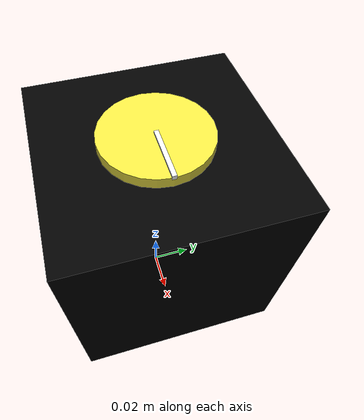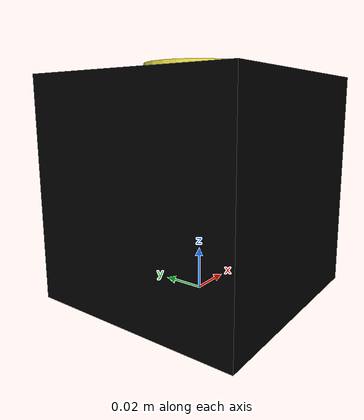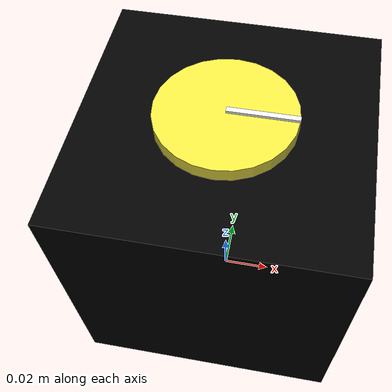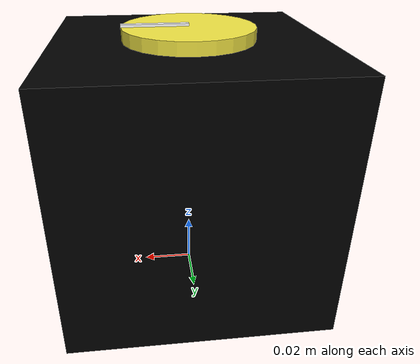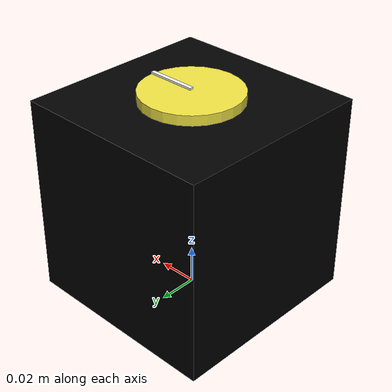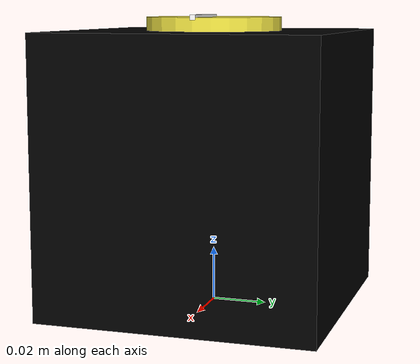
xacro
<?xml version="1.0"?>
<robot xmlns:xacro="http://www.ros.org/wiki/xacro" name="myfirst">

  <xacro:arg name="baud_rate" default="115200"/>
  <xacro:arg name="device" default="/dev/ttyACM0"/>
  <xacro:arg name="simulation" default="false"/>

  <!-- Loads qube_driver and passes launch arguments-->
  <xacro:include filename="$(find qube_driver)/ros2_control/qube_driver.ros2_control.xacro"/>
  <xacro:qube_driver_ros2_control
    name="qube_driver" prefix=""
    baud_rate="$(arg baud_rate)"
    device="$(arg device)"
    simulation="$(arg simulation)" />

  <link name="world"/>
  <link name="base_link"/>

  <joint name="base_joint" type="fixed">
    <parent link="world"/>
    <child link="base_link"/>
  </joint>

  <!-- Places Quanser cube -->
  <xacro:include filename="$(find qube_description)/urdf/qube.macro.xacro"/>
  <xacro:qube parent="base_link" prefix=""/>
</robot>

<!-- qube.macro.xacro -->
<robot xmlns:xacro="http://www.ros.org/wiki/xacro" >

    <material name="black">
      <color rgba="0 0 0 1"/>
    </material>
    <material name="white">
      <color rgba="1 1 1 1"/>
  </material>

  <xacro:macro name="qube" params="parent prefix">

    <!--Dimensions of Qube-->
    <xacro:property name="box_width" value="0.102"/>
    <xacro:property name="rotor_radius" value="0.025"/>
    <xacro:property name="rotor_length" value="0.01"/>
    <xacro:property name="angle_width" value="0.002"/>

    <link name="${prefix}stator_link">
      <visual>
        <geometry>
          <box size="${box_width} ${box_width} ${box_width}"/>
        </geometry>
        <material name="black"/>
      </visual>
    </link>

    <link name="${prefix}rotor_link">
      <visual>
        <geometry>
          <cylinder length="${rotor_length}" radius="${rotor_radius}"/>
        </geometry>
      </visual>
    </link>

    <link name="${prefix}angle_link">
      <visual>
        <geometry>
          <box size="${rotor_radius} ${angle_width} ${angle_width}"/>
        </geometry>
        <material name="white"/>
      </visual>
    </link>

    <joint name="${prefix}stator_joint" type="fixed">
      <parent link="${parent}"/>
      <child link="${prefix}stator_link"/>
      <origin xyz="0 0 ${box_width/2}"/>
    </joint>

    <joint name="${prefix}motor_joint" type="revolute">
      <parent link="${prefix}stator_link"/>
      <child link="${prefix}rotor_link"/>
      <origin xyz="0 0 ${box_width/2}"/>
      <limit effort="1000.0" lower="0.0" upper="6.28" velocity="0.5"/>
      <axis xyz="0 0 1"/>
    </joint>

    <joint name="${prefix}indicator_joint" type="fixed">
      <parent link="${prefix}rotor_link"/>
      <child link="${prefix}angle_link"/>
      <origin xyz="${rotor_radius/2} 0 ${rotor_length/2}"/>
    </joint>

  </xacro:macro>

</robot>
